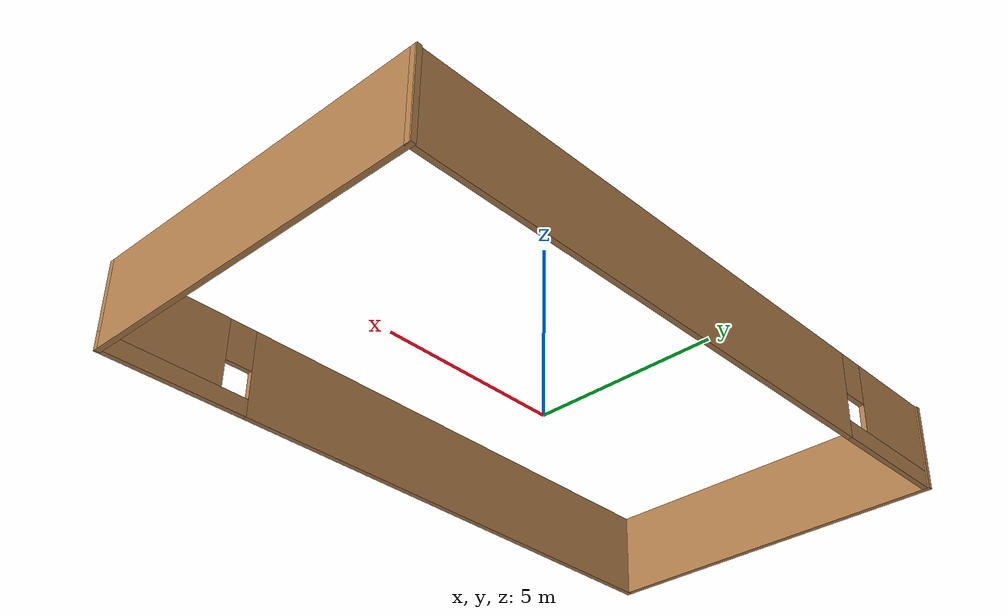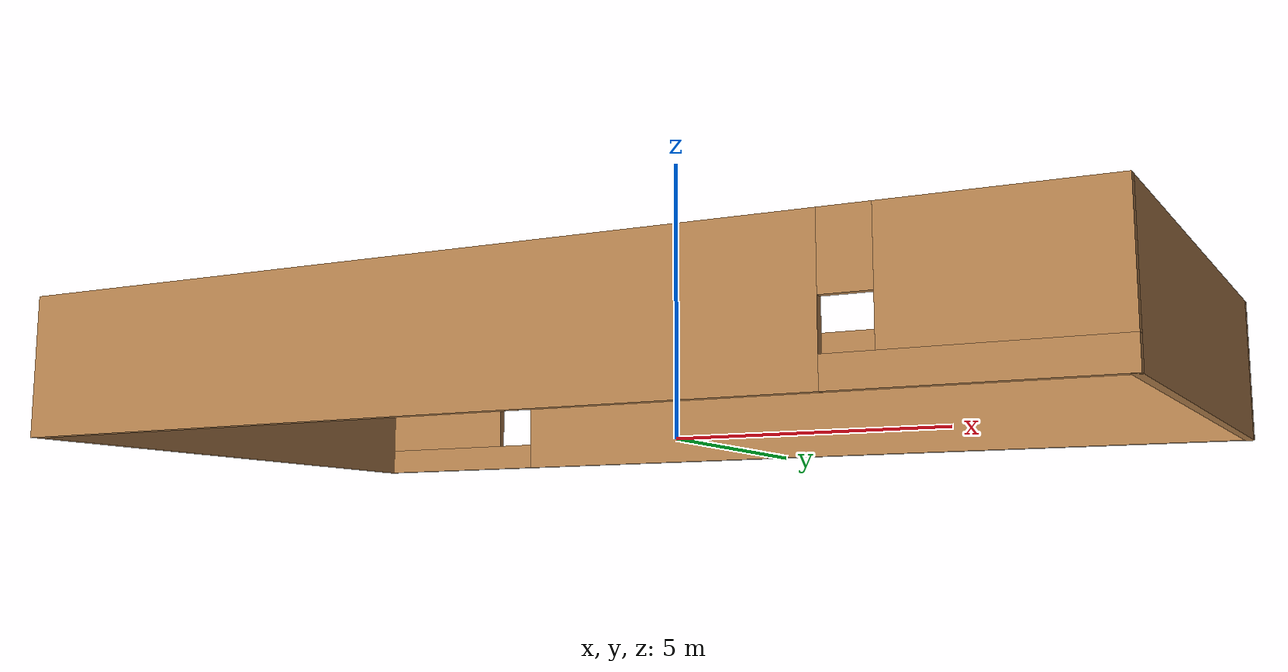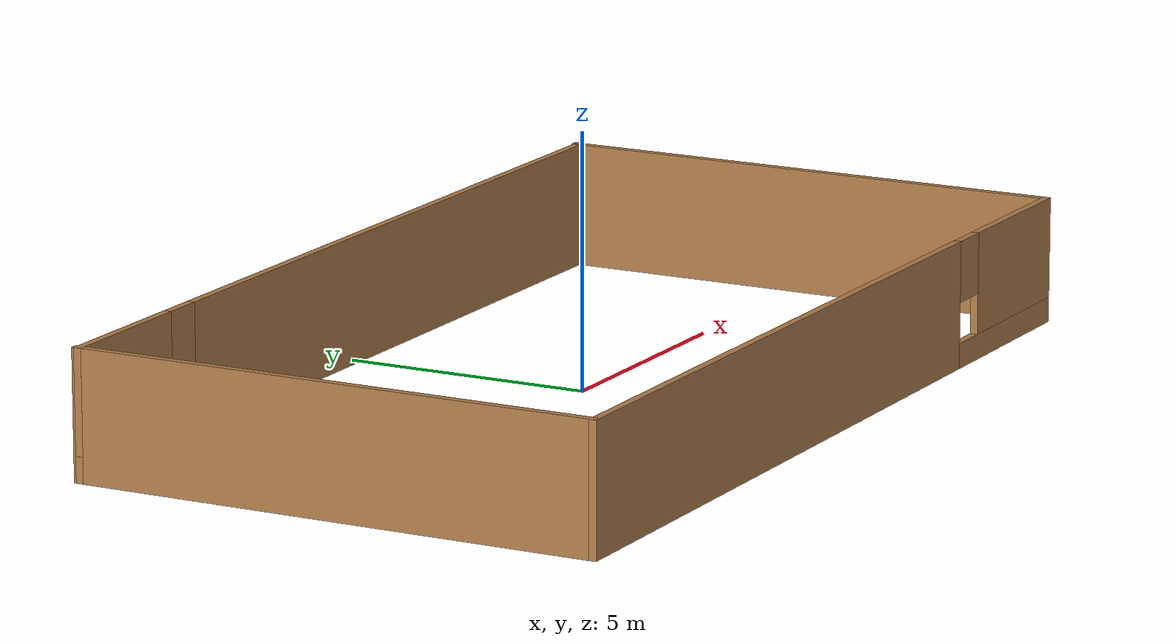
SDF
<?xml version='1.0'?>
<sdf version='1.7'>
  <model name='SelfTest'>
    <pose>-0.411128 -0.271079 0 0 -0 0</pose>
    <link name='Wall_1'>
      <collision name='Wall_1_Collision'>
        <geometry>
          <box>
            <size>10.4774 0.15 2.5</size>
          </box>
        </geometry>
        <pose>0 0 1.25 0 -0 0</pose>
      </collision>
      <visual name='Wall_1_Visual'>
        <pose>0 0 1.25 0 -0 0</pose>
        <geometry>
          <box>
            <size>10.4774 0.15 2.5</size>
          </box>
        </geometry>
        <material>
          <script>
            <uri>file://media/materials/scripts/gazebo.material</uri>
            <name>Gazebo/Wood</name>
          </script>
          <ambient>1 1 1 1</ambient>
        </material>
        <meta>
          <layer>0</layer>
        </meta>
      </visual>
      <pose>-9.36443 0.025247 0 0 -0 -1.5708</pose>
    </link>
    <link name='Wall_2'>
      <pose>0 -5.18392 0 0 -0 -0.000534</pose>
      <visual name='Wall_2_Visual_0'>
        <pose>-2.08202 0 1.25 0 -0 0</pose>
        <geometry>
          <box>
            <size>14.7154 0.15 2.5</size>
          </box>
        </geometry>
        <material>
          <script>
            <uri>file://media/materials/scripts/gazebo.material</uri>
            <name>Gazebo/Wood</name>
          </script>
          <ambient>1 1 1 1</ambient>
        </material>
        <meta>
          <layer>0</layer>
        </meta>
      </visual>
      <collision name='Wall_2_Collision_0'>
        <geometry>
          <box>
            <size>14.7154 0.15 2.5</size>
          </box>
        </geometry>
        <pose>-2.08202 0 1.25 0 -0 0</pose>
      </collision>
      <visual name='Wall_2_Visual_1'>
        <pose>7.35772 0 0.25 0 -0 0</pose>
        <geometry>
          <box>
            <size>4.16404 0.15 0.5</size>
          </box>
        </geometry>
        <material>
          <script>
            <uri>file://media/materials/scripts/gazebo.material</uri>
            <name>Gazebo/Wood</name>
          </script>
          <ambient>1 1 1 1</ambient>
        </material>
        <meta>
          <layer>0</layer>
        </meta>
      </visual>
      <collision name='Wall_2_Collision_1'>
        <geometry>
          <box>
            <size>4.16404 0.15 0.5</size>
          </box>
        </geometry>
        <pose>7.35772 0 0.25 0 -0 0</pose>
      </collision>
      <visual name='Wall_2_Visual_2'>
        <pose>7.75772 0 1.5 0 -0 0</pose>
        <geometry>
          <box>
            <size>3.36404 0.15 2</size>
          </box>
        </geometry>
        <material>
          <script>
            <uri>file://media/materials/scripts/gazebo.material</uri>
            <name>Gazebo/Wood</name>
          </script>
          <ambient>1 1 1 1</ambient>
        </material>
        <meta>
          <layer>0</layer>
        </meta>
      </visual>
      <collision name='Wall_2_Collision_2'>
        <geometry>
          <box>
            <size>3.36404 0.15 2</size>
          </box>
        </geometry>
        <pose>7.75772 0 1.5 0 -0 0</pose>
      </collision>
      <visual name='Wall_2_Visual_3'>
        <pose>5.6757 0 1.9 0 -0 0</pose>
        <geometry>
          <box>
            <size>0.8 0.15 1.2</size>
          </box>
        </geometry>
        <material>
          <script>
            <uri>file://media/materials/scripts/gazebo.material</uri>
            <name>Gazebo/Wood</name>
          </script>
          <ambient>1 1 1 1</ambient>
        </material>
        <meta>
          <layer>0</layer>
        </meta>
      </visual>
      <collision name='Wall_2_Collision_3'>
        <geometry>
          <box>
            <size>0.8 0.15 1.2</size>
          </box>
        </geometry>
        <pose>5.6757 0 1.9 0 -0 0</pose>
      </collision>
    </link>
    <link name='Wall_3'>
      <collision name='Wall_3_Collision'>
        <geometry>
          <box>
            <size>10.4874 0.15 2.5</size>
          </box>
        </geometry>
        <pose>0 0 1.25 0 -0 0</pose>
      </collision>
      <visual name='Wall_3_Visual'>
        <pose>0 0 1.25 0 -0 0</pose>
        <geometry>
          <box>
            <size>10.4874 0.15 2.5</size>
          </box>
        </geometry>
        <material>
          <script>
            <uri>file://media/materials/scripts/gazebo.material</uri>
            <name>Gazebo/Wood</name>
          </script>
          <ambient>1 1 1 1</ambient>
        </material>
        <meta>
          <layer>0</layer>
        </meta>
      </visual>
      <pose>9.36443 0.020247 0 0 -0 1.5708</pose>
    </link>
    <link name='Wall_4'>
      <pose>0 5.14851 0 0 -0 3.14159</pose>
      <visual name='Wall_4_Visual_0'>
        <pose>-1.92034 0 1.25 0 -0 0</pose>
        <geometry>
          <box>
            <size>15.0386 0.15 2.5</size>
          </box>
        </geometry>
        <material>
          <script>
            <uri>file://media/materials/scripts/gazebo.material</uri>
            <name>Gazebo/Wood</name>
          </script>
          <ambient>1 1 1 1</ambient>
        </material>
        <meta>
          <layer>0</layer>
        </meta>
      </visual>
      <collision name='Wall_4_Collision_0'>
        <geometry>
          <box>
            <size>15.0386 0.15 2.5</size>
          </box>
        </geometry>
        <pose>-1.92034 0 1.25 0 -0 0</pose>
      </collision>
      <visual name='Wall_4_Visual_1'>
        <pose>7.51928 0 0.25 0 -0 0</pose>
        <geometry>
          <box>
            <size>3.84069 0.15 0.5</size>
          </box>
        </geometry>
        <material>
          <script>
            <uri>file://media/materials/scripts/gazebo.material</uri>
            <name>Gazebo/Wood</name>
          </script>
          <ambient>1 1 1 1</ambient>
        </material>
        <meta>
          <layer>0</layer>
        </meta>
      </visual>
      <collision name='Wall_4_Collision_1'>
        <geometry>
          <box>
            <size>3.84069 0.15 0.5</size>
          </box>
        </geometry>
        <pose>7.51928 0 0.25 0 -0 0</pose>
      </collision>
      <visual name='Wall_4_Visual_2'>
        <pose>7.91928 0 1.5 0 -0 0</pose>
        <geometry>
          <box>
            <size>3.04069 0.15 2</size>
          </box>
        </geometry>
        <material>
          <script>
            <uri>file://media/materials/scripts/gazebo.material</uri>
            <name>Gazebo/Wood</name>
          </script>
          <ambient>1 1 1 1</ambient>
        </material>
        <meta>
          <layer>0</layer>
        </meta>
      </visual>
      <collision name='Wall_4_Collision_2'>
        <geometry>
          <box>
            <size>3.04069 0.15 2</size>
          </box>
        </geometry>
        <pose>7.91928 0 1.5 0 -0 0</pose>
      </collision>
      <visual name='Wall_4_Visual_3'>
        <pose>5.99894 0 1.9 0 -0 0</pose>
        <geometry>
          <box>
            <size>0.8 0.15 1.2</size>
          </box>
        </geometry>
        <material>
          <script>
            <uri>file://media/materials/scripts/gazebo.material</uri>
            <name>Gazebo/Wood</name>
          </script>
          <ambient>1 1 1 1</ambient>
        </material>
        <meta>
          <layer>0</layer>
        </meta>
      </visual>
      <collision name='Wall_4_Collision_3'>
        <geometry>
          <box>
            <size>0.8 0.15 1.2</size>
          </box>
        </geometry>
        <pose>5.99894 0 1.9 0 -0 0</pose>
      </collision>
    </link>
    <static>1</static>
  </model>
</sdf>
